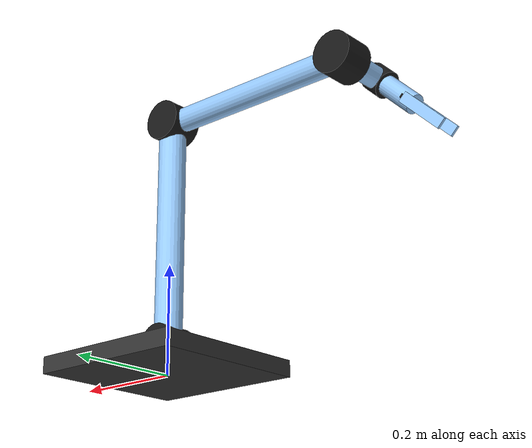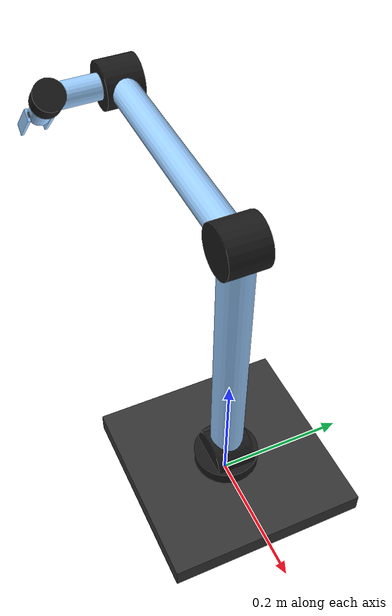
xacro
<?xml version="1.0"?>
<robot name="arm" xmlns:xacro="http://www.ros.org/wiki/xacro">
  <!-- ==================== PROPERTIES ==================== -->
  <xacro:property name="arm_base_link_height" value="0.02"/>
  <xacro:property name="arm_base_link_radius" value="0.05"/>
  <xacro:property name="arm_base_link_weight" value="0.3"/>
  <!-- UR5 DH link lengths / offsets -->
  <xacro:property name="d1"  value="0.089"/>   <!-- Joint 1 z-offset  -->
  <xacro:property name="a2"  value="0.425"/>   <!-- Upper arm length   (|a2|) -->
  <xacro:property name="a3"  value="0.392"/>   <!-- Forearm length     (|a3|) -->
  <xacro:property name="d4"  value="0.109"/>   <!-- Wrist-1 z-offset   -->
  <xacro:property name="d5"  value="0.095"/>   <!-- Wrist-2 z-offset   -->
  <xacro:property name="d6"  value="0.082"/>   <!-- Tool z-offset      -->
  <!-- ==================== Inertia Macros ================ -->
  <!-- Cylinder Inertia -->
  <xacro:macro name="cylinder_inertia" params="m r h">
    <inertial>
      <origin xyz="0 0 0" rpy="0 0 0"/>
      <mass value="${m}"/>
      <inertia
        ixx="${(1/12)*m*(3*r*r+h*h)}"
        ixy="0" ixz="0"
        iyy="${(1/12)*m*(3*r*r+h*h)}"
        iyz="0"
        izz="${(1/2)*m*r*r}"/>
    </inertial>
  </xacro:macro>
  <!--Sphere Inertia -->
  <xacro:macro name="sphere_inertia" params="m r">
    <inertial>
      <origin xyz="0 0 0" rpy="0 0 0"/>
      <mass value="${m}"/>
      <inertia
        ixx="${(2/5)*m*r*r}"
        ixy="0" ixz="0"
        iyy="${(2/5)*m*r*r}"
        iyz="0"
        izz="${(2/5)*m*r*r}"/>
    </inertial>
  </xacro:macro>
  <!-- Box Inertia -->
  <xacro:macro name="box_inertia" params="m x y z">
    <inertial>
      <origin xyz="0 0 0" rpy="0 0 0"/>
      <mass value="${m}"/>
      <inertia
        ixx="${(1/12)*m*(y*y+z*z)}"
        ixy="0" ixz="0"
        iyy="${(1/12)*m*(x*x+z*z)}"
        iyz="0"
        izz="${(1/12)*m*(x*x+y*y)}"/>
    </inertial>
  </xacro:macro>
  <!-- ==================== PEDESTAL & ARM BASE ==================== -->
  <link name="world"/>

  <link name="pedestal">
    <visual>
      <origin xyz="0 0 0" rpy="0 0 0"/>
      <geometry><box size="0.3 0.3 0.03"/></geometry>
      <material name="dark_grey"><color rgba="0.2 0.2 0.2 1"/></material>
    </visual>
    <collision>
      <origin xyz="0 0 0" rpy="0 0 0"/>
      <geometry><box size="0.3 0.3 0.03"/></geometry>
    </collision>
    <xacro:box_inertia m="10.0" x="0.3" y="0.3" z="0.03"/>
  </link>

  <joint name="pedestal_joint" type="fixed">
    <parent link="world"/>
    <child link="pedestal"/>
    <origin xyz="0 0 0.015" rpy="0 0 0"/>
  </joint>

  <link name="arm_base_link">
    <visual>
      <origin xyz="0 0 0" rpy="0 0 0"/>
      <geometry>
        <cylinder radius="${arm_base_link_radius}" length="${arm_base_link_height}"/>
      </geometry>
      <material name="black">
        <color rgba="0.1 0.1 0.1 1"/>
      </material>
    </visual>
    <collision>
      <origin xyz="0 0 0" rpy="0 0 0"/>
      <geometry>
        <cylinder radius="0.05" length="0.02"/>
      </geometry>
    </collision>
    <xacro:cylinder_inertia m="${arm_base_link_weight}" r="${arm_base_link_radius}" h="${arm_base_link_height}"/>
  </link>

  <!-- Joint 1: shoulder pan  — mounted to pedestal top -->
  <joint name="arm_base_joint" type="revolute">
    <parent link="pedestal"/>
    <child link="arm_base_link"/>
    <origin xyz="0.0 0 0.025" rpy="0 0 0"/> <!-- 0.015 (half pedestal) + 0.01 = 0.025 -->
    <limit lower="-3.14" upper="3.14" effort="150" velocity="3.14"/>
    <axis xyz="0 0 1"/>
  </joint>
  <!-- ==================== UPPER ARM LINK ==================== -->
  <!-- Length = |a2| = 0.425 m  (UR5 upper arm) -->
  <link name="upper_arm_link">
    <visual>
      <origin xyz="0 0 ${a2/2}" rpy="0 0 0"/>
      <geometry>
        <cylinder radius="0.025" length="${a2}"/>
      </geometry>
      <material name="pale_blue">
        <color rgba="0.6 0.8 1.0 1"/>
      </material>
    </visual>
    <collision>
      <origin xyz="0 0 ${a2/2}" rpy="0 0 0"/>
      <geometry>
        <cylinder radius="0.025" length="${a2}"/>
      </geometry>
    </collision>
    <xacro:cylinder_inertia m="8.393" r="0.025" h="${a2}"/>
  </link>
  <!-- Joint 2: shoulder lift — a2=0.425 m along z, alpha=0 deg, d=0
       A -90 deg rotation about y aligns the arm correctly for RViz zero-pose -->
  <joint name="upper_arm_joint" type="revolute">
    <parent link="arm_base_link"/>
    <child link="upper_arm_link"/>
    <origin xyz="0 0 0.01" rpy="0 0 0"/>
    <limit lower="-3.14" upper="3.14" effort="150" velocity="3.14"/>
    <axis xyz="0 1 0"/>
  </joint>
  <!-- ==================== BASE-UPPER ARM (cosmetic joint) ==================== -->
  <link name="base_upper_link">
    <visual>
      <origin xyz="0 0 0" rpy="1.5707 0 0"/>
      <geometry>
        <cylinder radius="0.0375" length="0.06"/>
      </geometry>
      <material name="black">
        <color rgba="0.1 0.1 0.1 1"/>
      </material>
    </visual>

    <xacro:cylinder_inertia m="0.3" r="0.025" h="0.06"/>
  </link>
  <joint name="base_upper_joint" type="fixed">
    <parent link="arm_base_link"/>
    <child link="base_upper_link"/>
    <origin xyz="0 0 0.01" rpy="0 -1.5707 0"/>
  </joint>
  <!-- ==================== UPPER-FORE ARM (elbow sphere) ==================== -->
  <link name="upper_forearm_link">
    <visual>
      <origin xyz="0 0 0" rpy="1.5707 0 0"/>
      <geometry>
        <cylinder radius="0.0375" length="0.06"/>
      </geometry>
      <material name="black">
        <color rgba="0.1 0.1 0.1 1"/>
      </material>
    </visual>

    <xacro:cylinder_inertia m="0.3" r="0.025" h="0.06"/>
  </link>
  <!-- Fixed cosmetic elbow sphere at end of upper arm -->
  <joint name="upper_forearm_joint" type="fixed">
    <parent link="upper_arm_link"/>
    <child link="upper_forearm_link"/>
    <origin xyz="0 0 ${a2}" rpy="0 1.5707 0"/>
  </joint>
  <!-- ==================== FOREARM LINK ==================== -->
  <!-- Length = |a3| = 0.392 m  (UR5 forearm) -->
  <link name="forearm_link">
    <visual>
      <origin xyz="0 0 ${a3/2}" rpy="0 0 0"/>
      <geometry>
        <cylinder radius="0.022" length="${a3}"/>
      </geometry>
      <material name="pale_blue">
        <color rgba="0.6 0.8 1.0 1"/>
      </material>
    </visual>
    <collision>
      <origin xyz="0 0 ${a3/2}" rpy="0 0 0"/>
      <geometry>
        <cylinder radius="0.022" length="${a3}"/>
      </geometry>
    </collision>
    <xacro:cylinder_inertia m="2.275" r="0.022" h="${a3}"/>
  </link>
  <!-- Joint 3: elbow — a3=0.392 m, alpha=0 deg, d=0 -->
  <joint name="forearm_joint" type="revolute">
    <parent link="upper_arm_link"/>
    <child link="forearm_link"/>
    <origin xyz="0 0 ${a2}" rpy="0 -1.5707 0"/>
    <limit lower="-3.14" upper="3.14" effort="150" velocity="3.14"/>
    <axis xyz="0 1 0"/>
  </joint>
  <!-- ==================== FOREARM-WRIST (wrist sphere) ==================== -->
  <link name="forearm_wrist_link">
    <visual>
      <origin xyz="0 0 0" rpy="1.5707 0 0"/>
      <geometry>
        <cylinder radius="0.0375" length="0.06"/>
      </geometry>
      <material name="black">
        <color rgba="0.1 0.1 0.1 1"/>
      </material>
    </visual>

    <xacro:cylinder_inertia m="0.3" r="0.025" h="0.06"/>
  </link>
  <!-- Fixed cosmetic wrist sphere at end of forearm -->
  <joint name="forearm_wrist_joint" type="fixed">
    <parent link="forearm_link"/>
    <child link="forearm_wrist_link"/>
    <origin xyz="0 0 ${a3}" rpy="0 0 0"/>
  </joint>
  <!-- ==================== WRIST LINK (wrist-1) ==================== -->
  <link name="wrist_link">
    <visual>
      <origin xyz="0 0 ${d4/2}" rpy="0 0 0"/>
      <geometry>
        <cylinder radius="0.02" length="${d4}"/>
      </geometry>
      <material name="pale_blue">
        <color rgba="0.6 0.8 1.0 1"/>
      </material>
    </visual>
    <collision>
      <origin xyz="0 0 ${d4/2}" rpy="0 0 0"/>
      <geometry>
        <cylinder radius="0.02" length="${d4}"/>
      </geometry>
    </collision>
    <xacro:cylinder_inertia m="1.219" r="0.02" h="${d4}"/>
  </link>
  <!-- Joint 4: wrist-1 — d4=0.109 m, alpha=+90 deg, a=0 -->
  <joint name="wrist_joint" type="revolute">
    <parent link="forearm_link"/>
    <child link="wrist_link"/>
    <origin xyz="0 0 ${a3}" rpy="1.5707 -0.7854 0"/>
    <limit lower="-3.14" upper="3.14" effort="28" velocity="3.14"/>
    <axis xyz="0 0 1"/>
  </joint>
  <!-- ==================== GRIPPER_BASE_TO_WRIST (wrist-2) ==================== -->
  <link name="gripper_baseTOwrist_link">
    <visual>
      <origin xyz="0 0 ${d5/2}" rpy="0 0 0"/>
      <geometry>
        <cylinder radius="0.018" length="${d5}"/>
      </geometry>
      <material name="pale_blue">
        <color rgba="0.6 0.8 1.0 1"/>
      </material>
    </visual>
    <collision>
      <origin xyz="0 0 ${d5/2}" rpy="0 0 0"/>
      <geometry>
        <cylinder radius="0.018" length="${d5}"/>
      </geometry>
    </collision>
    <xacro:cylinder_inertia m="1.219" r="0.018" h="${d5}"/>
  </link>
  <!-- Joint 5: wrist-2 — d5=0.095 m, alpha=-90 deg, a=0 -->
  <joint name="gripper_baseTOwrist_joint" type="revolute">
    <parent link="wrist_link"/>
    <child link="gripper_baseTOwrist_link"/>
    <origin xyz="0 0 ${d4}" rpy="-1.5707 0 0"/>
    <limit lower="-3.14" upper="3.14" effort="28" velocity="3.14"/>
    <axis xyz="0 0 1"/>
  </joint>
  <!-- ==================== WRIST-GRIPPER (cosmetic joint) ==================== -->
  <link name="wrist_gripper_link">
    <visual>
      <origin xyz="0 0 0" rpy="0 0 0"/>
      <geometry>
        <cylinder radius="0.025" length="0.04"/>
      </geometry>
      <material name="black">
        <color rgba="0.1 0.1 0.1 1"/>
      </material>
    </visual>

    <xacro:cylinder_inertia m="0.1" r="0.02" h="0.04"/>
  </link>
  <joint name="wrist_gripper_joint" type="fixed">
    <parent link="wrist_link"/>
    <child link="wrist_gripper_link"/>
    <origin xyz="0 0 ${d4}" rpy="-1.5707 0 0"/>
  </joint>
  <!-- ==================== GRIPPER BASE LINK (tool flange / wrist-3) ==================== -->
  <link name="gripper_base_link">
    <visual>
      <origin xyz="0 0 0" rpy="0 0 0"/>
      <geometry>
        <box size="0.008 0.04 0.04"/>
      </geometry>
      <material name="black">
        <color rgba="0.1 0.1 0.1 1"/>
      </material>
    </visual>
    <collision>
      <origin xyz="0 0 0" rpy="0 0 0"/>
      <geometry>
        <box size="0.008 0.04 0.04"/>
      </geometry>
    </collision>
    <xacro:box_inertia m="0.2" x="0.008" y="0.04" z="0.04"/>
  </link>
  <!-- Joint 6: wrist-3 — d6=0.082 m, alpha=0 deg, a=0 -->
  <joint name="gripper_base_joint" type="revolute">
    <parent link="gripper_baseTOwrist_link"/>
    <child link="gripper_base_link"/>
    <origin xyz="0 0 ${d5}" rpy="0 0 0"/>
    <limit lower="-3.14" upper="3.14" effort="28" velocity="3.14"/>
    <axis xyz="0 0 1"/>
  </joint>
  <!-- ==================== PRONGS ==================== -->
  <!--RIGHT PRONG-->
  <link name="right_prong_link">
    <visual>
      <origin xyz="0 0 0.018" rpy="0 0 0"/>
      <geometry>
        <box size="0.02 0.005 0.1"/>
      </geometry>
      <material name="pale_blue">
        <color rgba="0.6 0.8 1.0 1"/>
      </material>
    </visual>
    <collision>
      <origin xyz="0 0 0.018" rpy="0 0 0"/>
      <geometry>
        <box size="0.02 0.005 0.1"/>
      </geometry>
    </collision>
    <xacro:box_inertia m="0.05" x="0.02" y="0.015" z="0.1"/>
  </link>
  <joint name="right_prong_joint" type="prismatic">
    <parent link="gripper_base_link"/>
    <child link="right_prong_link"/>
    <origin xyz="0 0.02 0.018" rpy="0 0 0"/>
    <limit lower="0" upper="0.08" effort="10" velocity="1.0"/>
    <axis xyz="0 1 0"/>
  </joint>
  <!--LEFT PRONG-->
  <link name="left_prong_link">
    <visual>
      <origin xyz="0 0 0.018" rpy="0 0 0"/>
      <geometry>
        <box size="0.02 0.005 0.1"/>
      </geometry>
      <material name="pale_blue">
        <color rgba="0.6 0.8 1.0 1"/>
      </material>
    </visual>
    <collision>
      <origin xyz="0 0 0.018" rpy="0 0 0"/>
      <geometry>
        <box size="0.02 0.005 0.1"/>
      </geometry>
    </collision>
    <xacro:box_inertia m="0.05" x="0.02" y="0.015" z="0.1"/>
  </link>

  <joint name="left_prong_joint" type="prismatic">
    <parent link="gripper_base_link"/>
    <child link="left_prong_link"/>
    <origin xyz="0 -0.02 0.018" rpy="0 0 0"/>
    <limit lower="-0.08" upper="0" effort="10" velocity="1.0"/>
    <axis xyz="0 1 0"/>
  </joint>

  <!-- ==================== GRIPPER TCP (tool center point) ==================== -->
  <link name="gripper_tcp"/>

  <joint name="gripper_base_to_tcp" type="fixed">

    <parent link="gripper_base_link"/>
    <child link="gripper_tcp"/>
    <origin xyz="0.0 0.0 0.075" rpy="0.0 0.0 0.0"/>
  </joint>
  <!-- ros2_control hardware interface -->
  <ros2_control name="arm_system" type="system">
    <hardware>
      <plugin>gz_ros2_control/GazeboSimSystem</plugin>
    </hardware>
    <joint name="arm_base_joint">
      <command_interface name="position"/>
      <state_interface name="position"/>
      <state_interface name="velocity"/>
    </joint>
    <joint name="upper_arm_joint">
      <command_interface name="position"/>
      <state_interface name="position">
        <param name="initial_value">1.57</param>
      </state_interface>
      <state_interface name="velocity"/>
    </joint>
    <joint name="forearm_joint">
      <command_interface name="position"/>
      <state_interface name="position">
        <param name="initial_value">-1.57</param>
      </state_interface>
      <state_interface name="velocity"/>
    </joint>
    <joint name="wrist_joint">
      <command_interface name="position"/>
      <state_interface name="position">
        <param name="initial_value">-1.57</param>
      </state_interface>
      <state_interface name="velocity"/>
    </joint>
    <joint name="gripper_baseTOwrist_joint">
      <command_interface name="position"/>
      <state_interface name="position"/>
      <state_interface name="velocity"/>
    </joint>
    <joint name="gripper_base_joint">
      <command_interface name="position"/>
      <state_interface name="position"/>
      <state_interface name="velocity"/>
    </joint>
    <joint name="right_prong_joint">
      <command_interface name="position"/>
      <state_interface name="position"/>
      <state_interface name="velocity"/>
    </joint>
    <joint name="left_prong_joint">
      <command_interface name="position"/>
      <state_interface name="position"/>
      <state_interface name="velocity"/>
    </joint>
  </ros2_control>

  <!-- ==================== GAZEBO FRICTION & CONTACT PROPERTIES ==================== -->
  <gazebo reference="right_prong_link">
    <mu1>1.5</mu1>
    <mu2>1.5</mu2>
    <kp>1000000.0</kp>
    <kd>1.0</kd>
    <minDepth>0.001</minDepth>
    <maxVel>0.1</maxVel>
  </gazebo>

  <gazebo reference="left_prong_link">
    <mu1>1.5</mu1>
    <mu2>1.5</mu2>
    <kp>1000000.0</kp>
    <kd>1.0</kd>
    <minDepth>0.001</minDepth>
    <maxVel>0.1</maxVel>
  </gazebo>

  <!-- Path to arm_controllers.yaml — set by launch file via xacro:arg -->
  <xacro:arg name="controllers_file" default=""/>
  <!-- Namespace for this arm instance (arm1 or arm2) -->
  <xacro:arg name="arm_namespace" default="arm1"/>
  <xacro:property name="c_file" value="$(arg controllers_file)"/>

  <!-- gz_ros2_control plugin — each instance gets its own namespace so
       two arms can coexist with separate controller_managers -->
  <xacro:if value="${c_file != ''}">
    <gazebo>
      <plugin filename="gz_ros2_control-system"
              name="gz_ros2_control::GazeboSimROS2ControlPlugin">
        <parameters>$(arg controllers_file)</parameters>
        <robot_param>robot_description</robot_param>
        <robot_param_node>arm_state_publisher</robot_param_node>
        <ros>
          <namespace>/$(arg arm_namespace)</namespace>
        </ros>
      </plugin>
    </gazebo>
  </xacro:if>
  <xacro:unless value="${c_file != ''}">
    <gazebo><static>true</static></gazebo>
  </xacro:unless>
</robot>
